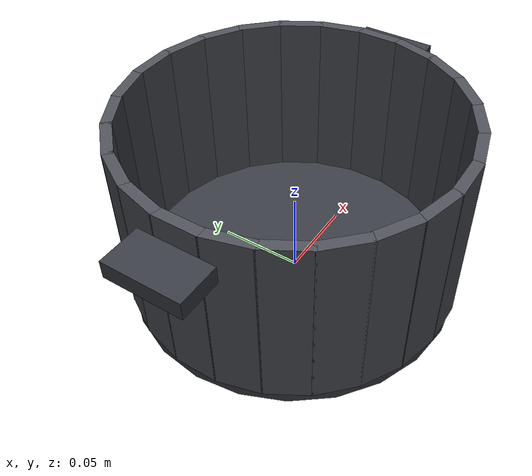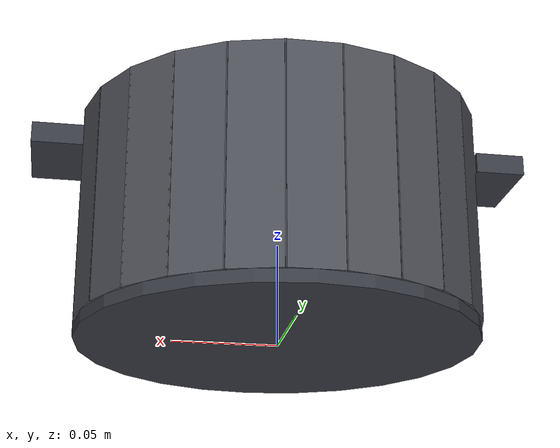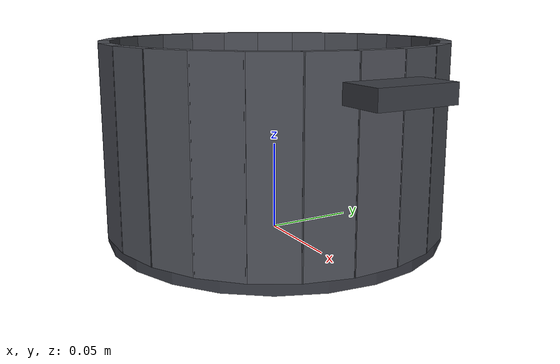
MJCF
<mujoco model="pot">
  <compiler angle="radian" meshdir="." texturedir="."/>
  <asset>
  </asset>
  <worldbody>
    <body name="pot" pos="0 0 0">
      <inertial pos="-1.1135e-18 1.68349e-08 0.0428747" quat="0 0.707107 0 0.707107" mass="0.55" diaginertia="0.00418126 0.0029284 0.00269874"/>
      <site name="pot_center" pos="0 0 0" size="0.005" rgba="0 0 0 0"/>
      <site name="pot_opening" pos="0 0 0.1100" size="0.0900" rgba="0 0 0 0"/>
      <site name="pot_floor" pos="0 0 0.0060" size="0.005" rgba="0 0 0 0"/>
      <geom name="pot_vis0" type="cylinder" size="0.0960 0.0030" pos="0 4.32723e-08 0.003" rgba="0.22 0.23 0.26 1" group="2" contype="0" conaffinity="0"/>
      <geom name="pot_col1" type="cylinder" size="0.0960 0.0030" pos="0 4.32723e-08 0.003" rgba="0.5 0.5 0.5 0.3" group="3" condim="6" friction="1 0.02 0.004"/>
      <geom name="pot_vis2" type="box" size="0.0030 0.0130 0.0520" pos="0.093 4.32723e-08 0.058" euler="0 0 0.0000" rgba="0.30 0.31 0.34 1" group="2" contype="0" conaffinity="0"/>
      <geom name="pot_col3" type="box" size="0.0030 0.0130 0.0520" pos="0.093 4.32723e-08 0.058" euler="0 0 0.0000" rgba="0.5 0.5 0.5 0.3" group="3" condim="6" friction="1 0.02 0.004"/>
      <geom name="pot_vis4" type="box" size="0.0030 0.0130 0.0520" pos="0.0898 0.0241 0.058" euler="0 0 0.2618" rgba="0.30 0.31 0.34 1" group="2" contype="0" conaffinity="0"/>
      <geom name="pot_col5" type="box" size="0.0030 0.0130 0.0520" pos="0.0898 0.0241 0.058" euler="0 0 0.2618" rgba="0.5 0.5 0.5 0.3" group="3" condim="6" friction="1 0.02 0.004"/>
      <geom name="pot_vis6" type="box" size="0.0030 0.0130 0.0520" pos="0.0805 0.0465 0.058" euler="0 0 0.5236" rgba="0.30 0.31 0.34 1" group="2" contype="0" conaffinity="0"/>
      <geom name="pot_col7" type="box" size="0.0030 0.0130 0.0520" pos="0.0805 0.0465 0.058" euler="0 0 0.5236" rgba="0.5 0.5 0.5 0.3" group="3" condim="6" friction="1 0.02 0.004"/>
      <geom name="pot_vis8" type="box" size="0.0030 0.0130 0.0520" pos="0.0658 0.0658 0.058" euler="0 0 0.7854" rgba="0.30 0.31 0.34 1" group="2" contype="0" conaffinity="0"/>
      <geom name="pot_col9" type="box" size="0.0030 0.0130 0.0520" pos="0.0658 0.0658 0.058" euler="0 0 0.7854" rgba="0.5 0.5 0.5 0.3" group="3" condim="6" friction="1 0.02 0.004"/>
      <geom name="pot_vis10" type="box" size="0.0030 0.0130 0.0520" pos="0.0465 0.0805 0.058" euler="0 0 1.0472" rgba="0.30 0.31 0.34 1" group="2" contype="0" conaffinity="0"/>
      <geom name="pot_col11" type="box" size="0.0030 0.0130 0.0520" pos="0.0465 0.0805 0.058" euler="0 0 1.0472" rgba="0.5 0.5 0.5 0.3" group="3" condim="6" friction="1 0.02 0.004"/>
      <geom name="pot_vis12" type="box" size="0.0030 0.0130 0.0520" pos="0.0241 0.0898 0.058" euler="0 0 1.3090" rgba="0.30 0.31 0.34 1" group="2" contype="0" conaffinity="0"/>
      <geom name="pot_col13" type="box" size="0.0030 0.0130 0.0520" pos="0.0241 0.0898 0.058" euler="0 0 1.3090" rgba="0.5 0.5 0.5 0.3" group="3" condim="6" friction="1 0.02 0.004"/>
      <geom name="pot_vis14" type="box" size="0.0030 0.0130 0.0520" pos="0 0.093 0.058" euler="0 0 1.5708" rgba="0.30 0.31 0.34 1" group="2" contype="0" conaffinity="0"/>
      <geom name="pot_col15" type="box" size="0.0030 0.0130 0.0520" pos="0 0.093 0.058" euler="0 0 1.5708" rgba="0.5 0.5 0.5 0.3" group="3" condim="6" friction="1 0.02 0.004"/>
      <geom name="pot_vis16" type="box" size="0.0030 0.0130 0.0520" pos="-0.0241 0.0898 0.058" euler="0 0 1.8326" rgba="0.30 0.31 0.34 1" group="2" contype="0" conaffinity="0"/>
      <geom name="pot_col17" type="box" size="0.0030 0.0130 0.0520" pos="-0.0241 0.0898 0.058" euler="0 0 1.8326" rgba="0.5 0.5 0.5 0.3" group="3" condim="6" friction="1 0.02 0.004"/>
      <geom name="pot_vis18" type="box" size="0.0030 0.0130 0.0520" pos="-0.0465 0.0805 0.058" euler="0 0 2.0944" rgba="0.30 0.31 0.34 1" group="2" contype="0" conaffinity="0"/>
      <geom name="pot_col19" type="box" size="0.0030 0.0130 0.0520" pos="-0.0465 0.0805 0.058" euler="0 0 2.0944" rgba="0.5 0.5 0.5 0.3" group="3" condim="6" friction="1 0.02 0.004"/>
      <geom name="pot_vis20" type="box" size="0.0030 0.0130 0.0520" pos="-0.0658 0.0658 0.058" euler="0 0 2.3562" rgba="0.30 0.31 0.34 1" group="2" contype="0" conaffinity="0"/>
      <geom name="pot_col21" type="box" size="0.0030 0.0130 0.0520" pos="-0.0658 0.0658 0.058" euler="0 0 2.3562" rgba="0.5 0.5 0.5 0.3" group="3" condim="6" friction="1 0.02 0.004"/>
      <geom name="pot_vis22" type="box" size="0.0030 0.0130 0.0520" pos="-0.0805 0.0465 0.058" euler="0 0 2.6180" rgba="0.30 0.31 0.34 1" group="2" contype="0" conaffinity="0"/>
      <geom name="pot_col23" type="box" size="0.0030 0.0130 0.0520" pos="-0.0805 0.0465 0.058" euler="0 0 2.6180" rgba="0.5 0.5 0.5 0.3" group="3" condim="6" friction="1 0.02 0.004"/>
      <geom name="pot_vis24" type="box" size="0.0030 0.0130 0.0520" pos="-0.0898 0.0241 0.058" euler="0 0 2.8798" rgba="0.30 0.31 0.34 1" group="2" contype="0" conaffinity="0"/>
      <geom name="pot_col25" type="box" size="0.0030 0.0130 0.0520" pos="-0.0898 0.0241 0.058" euler="0 0 2.8798" rgba="0.5 0.5 0.5 0.3" group="3" condim="6" friction="1 0.02 0.004"/>
      <geom name="pot_vis26" type="box" size="0.0030 0.0130 0.0520" pos="-0.093 4.32723e-08 0.058" euler="0 0 3.1416" rgba="0.30 0.31 0.34 1" group="2" contype="0" conaffinity="0"/>
      <geom name="pot_col27" type="box" size="0.0030 0.0130 0.0520" pos="-0.093 4.32723e-08 0.058" euler="0 0 3.1416" rgba="0.5 0.5 0.5 0.3" group="3" condim="6" friction="1 0.02 0.004"/>
      <geom name="pot_vis28" type="box" size="0.0030 0.0130 0.0520" pos="-0.0898 -0.0241 0.058" euler="0 0 3.4034" rgba="0.30 0.31 0.34 1" group="2" contype="0" conaffinity="0"/>
      <geom name="pot_col29" type="box" size="0.0030 0.0130 0.0520" pos="-0.0898 -0.0241 0.058" euler="0 0 3.4034" rgba="0.5 0.5 0.5 0.3" group="3" condim="6" friction="1 0.02 0.004"/>
      <geom name="pot_vis30" type="box" size="0.0030 0.0130 0.0520" pos="-0.0805 -0.0465 0.058" euler="0 0 3.6652" rgba="0.30 0.31 0.34 1" group="2" contype="0" conaffinity="0"/>
      <geom name="pot_col31" type="box" size="0.0030 0.0130 0.0520" pos="-0.0805 -0.0465 0.058" euler="0 0 3.6652" rgba="0.5 0.5 0.5 0.3" group="3" condim="6" friction="1 0.02 0.004"/>
      <geom name="pot_vis32" type="box" size="0.0030 0.0130 0.0520" pos="-0.0658 -0.0658 0.058" euler="0 0 3.9270" rgba="0.30 0.31 0.34 1" group="2" contype="0" conaffinity="0"/>
      <geom name="pot_col33" type="box" size="0.0030 0.0130 0.0520" pos="-0.0658 -0.0658 0.058" euler="0 0 3.9270" rgba="0.5 0.5 0.5 0.3" group="3" condim="6" friction="1 0.02 0.004"/>
      <geom name="pot_vis34" type="box" size="0.0030 0.0130 0.0520" pos="-0.0465 -0.0805 0.058" euler="0 0 4.1888" rgba="0.30 0.31 0.34 1" group="2" contype="0" conaffinity="0"/>
      <geom name="pot_col35" type="box" size="0.0030 0.0130 0.0520" pos="-0.0465 -0.0805 0.058" euler="0 0 4.1888" rgba="0.5 0.5 0.5 0.3" group="3" condim="6" friction="1 0.02 0.004"/>
      <geom name="pot_vis36" type="box" size="0.0030 0.0130 0.0520" pos="-0.0241 -0.0898 0.058" euler="0 0 4.4506" rgba="0.30 0.31 0.34 1" group="2" contype="0" conaffinity="0"/>
      <geom name="pot_col37" type="box" size="0.0030 0.0130 0.0520" pos="-0.0241 -0.0898 0.058" euler="0 0 4.4506" rgba="0.5 0.5 0.5 0.3" group="3" condim="6" friction="1 0.02 0.004"/>
      <geom name="pot_vis38" type="box" size="0.0030 0.0130 0.0520" pos="-0 -0.093 0.058" euler="0 0 4.7124" rgba="0.30 0.31 0.34 1" group="2" contype="0" conaffinity="0"/>
      <geom name="pot_col39" type="box" size="0.0030 0.0130 0.0520" pos="-0 -0.093 0.058" euler="0 0 4.7124" rgba="0.5 0.5 0.5 0.3" group="3" condim="6" friction="1 0.02 0.004"/>
      <geom name="pot_vis40" type="box" size="0.0030 0.0130 0.0520" pos="0.0241 -0.0898 0.058" euler="0 0 4.9742" rgba="0.30 0.31 0.34 1" group="2" contype="0" conaffinity="0"/>
      <geom name="pot_col41" type="box" size="0.0030 0.0130 0.0520" pos="0.0241 -0.0898 0.058" euler="0 0 4.9742" rgba="0.5 0.5 0.5 0.3" group="3" condim="6" friction="1 0.02 0.004"/>
      <geom name="pot_vis42" type="box" size="0.0030 0.0130 0.0520" pos="0.0465 -0.0805 0.058" euler="0 0 5.2360" rgba="0.30 0.31 0.34 1" group="2" contype="0" conaffinity="0"/>
      <geom name="pot_col43" type="box" size="0.0030 0.0130 0.0520" pos="0.0465 -0.0805 0.058" euler="0 0 5.2360" rgba="0.5 0.5 0.5 0.3" group="3" condim="6" friction="1 0.02 0.004"/>
      <geom name="pot_vis44" type="box" size="0.0030 0.0130 0.0520" pos="0.0658 -0.0658 0.058" euler="0 0 5.4978" rgba="0.30 0.31 0.34 1" group="2" contype="0" conaffinity="0"/>
      <geom name="pot_col45" type="box" size="0.0030 0.0130 0.0520" pos="0.0658 -0.0658 0.058" euler="0 0 5.4978" rgba="0.5 0.5 0.5 0.3" group="3" condim="6" friction="1 0.02 0.004"/>
      <geom name="pot_vis46" type="box" size="0.0030 0.0130 0.0520" pos="0.0805 -0.0465 0.058" euler="0 0 5.7596" rgba="0.30 0.31 0.34 1" group="2" contype="0" conaffinity="0"/>
      <geom name="pot_col47" type="box" size="0.0030 0.0130 0.0520" pos="0.0805 -0.0465 0.058" euler="0 0 5.7596" rgba="0.5 0.5 0.5 0.3" group="3" condim="6" friction="1 0.02 0.004"/>
      <geom name="pot_vis48" type="box" size="0.0030 0.0130 0.0520" pos="0.0898 -0.0241 0.058" euler="0 0 6.0214" rgba="0.30 0.31 0.34 1" group="2" contype="0" conaffinity="0"/>
      <geom name="pot_col49" type="box" size="0.0030 0.0130 0.0520" pos="0.0898 -0.0241 0.058" euler="0 0 6.0214" rgba="0.5 0.5 0.5 0.3" group="3" condim="6" friction="1 0.02 0.004"/>
      <geom name="pot_vis50" type="box" size="0.012 0.022 0.005" pos="0.108 4.32723e-08 0.092" rgba="0.22 0.23 0.26 1" group="2" contype="0" conaffinity="0"/>
      <geom name="pot_col51" type="box" size="0.012 0.022 0.005" pos="0.108 4.32723e-08 0.092" rgba="0.5 0.5 0.5 0.3" group="3" condim="6" friction="1 0.02 0.004"/>
      <geom name="pot_vis52" type="box" size="0.012 0.022 0.005" pos="-0.108 4.32723e-08 0.092" rgba="0.22 0.23 0.26 1" group="2" contype="0" conaffinity="0"/>
      <geom name="pot_col53" type="box" size="0.012 0.022 0.005" pos="-0.108 4.32723e-08 0.092" rgba="0.5 0.5 0.5 0.3" group="3" condim="6" friction="1 0.02 0.004"/>
    </body>
  </worldbody>
</mujoco>
